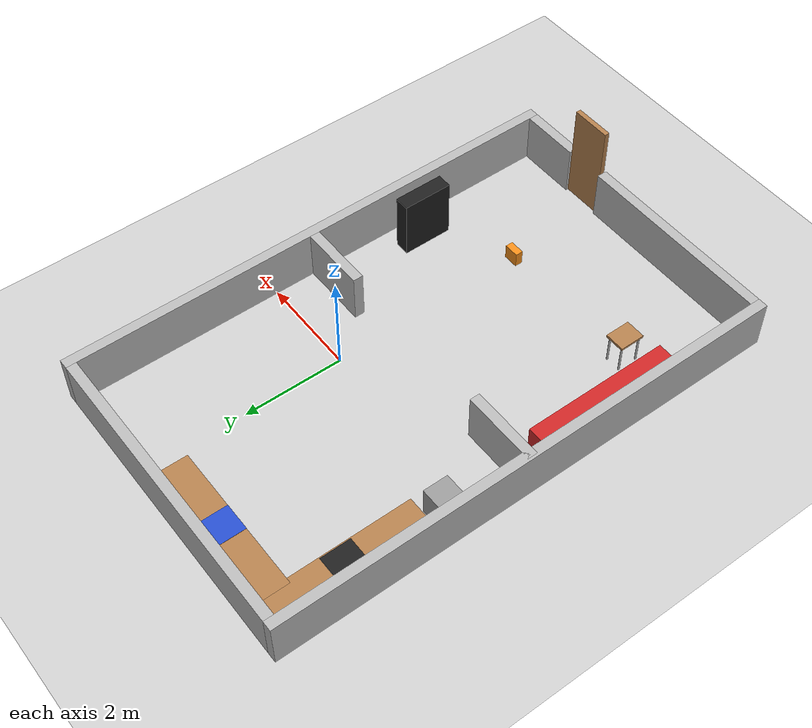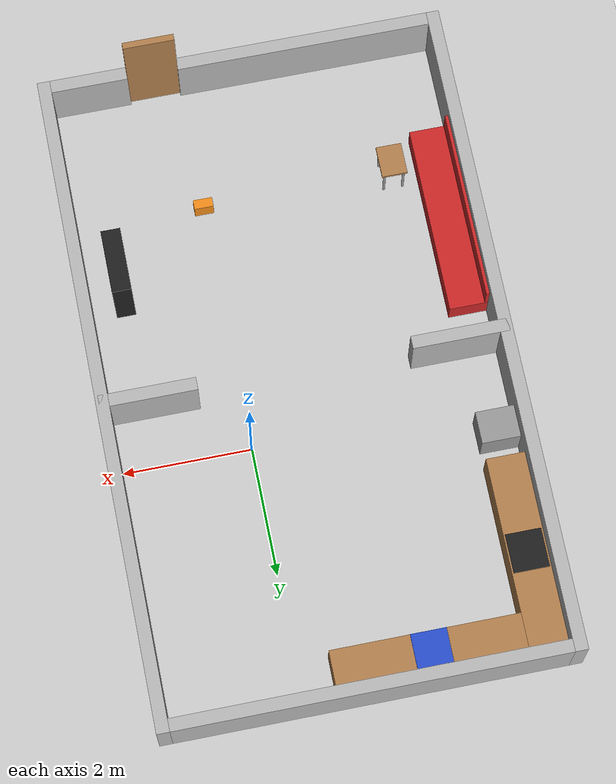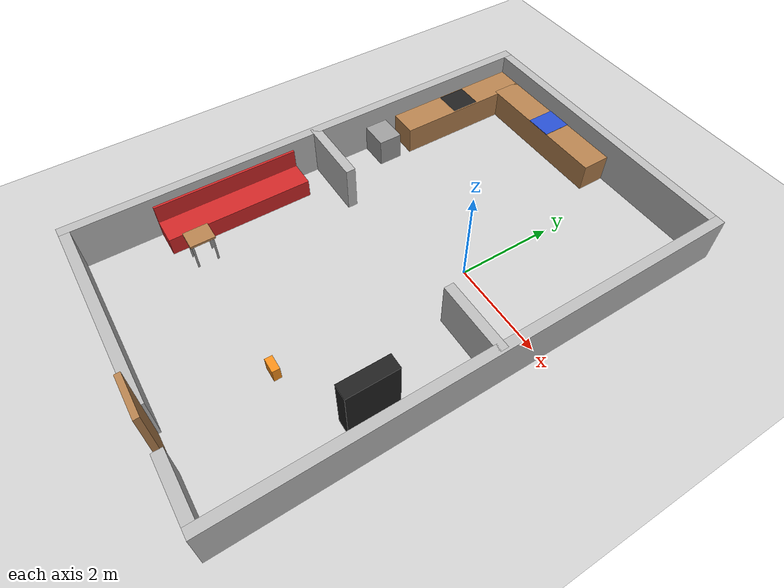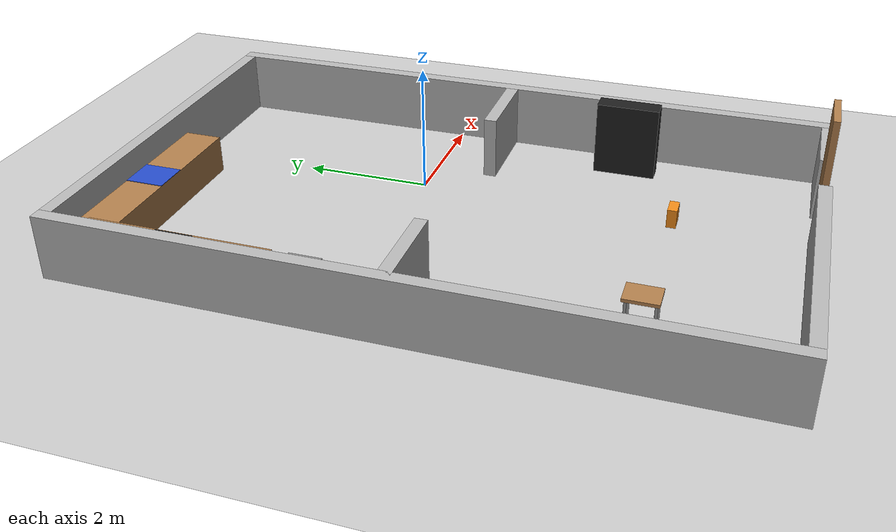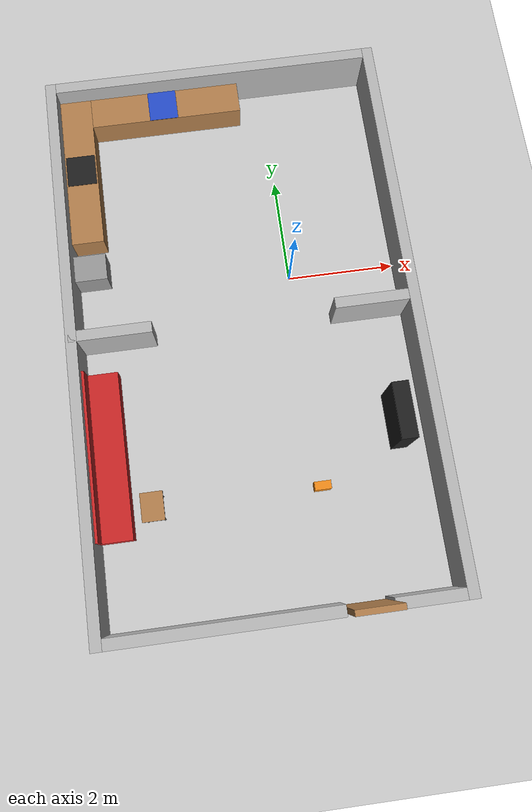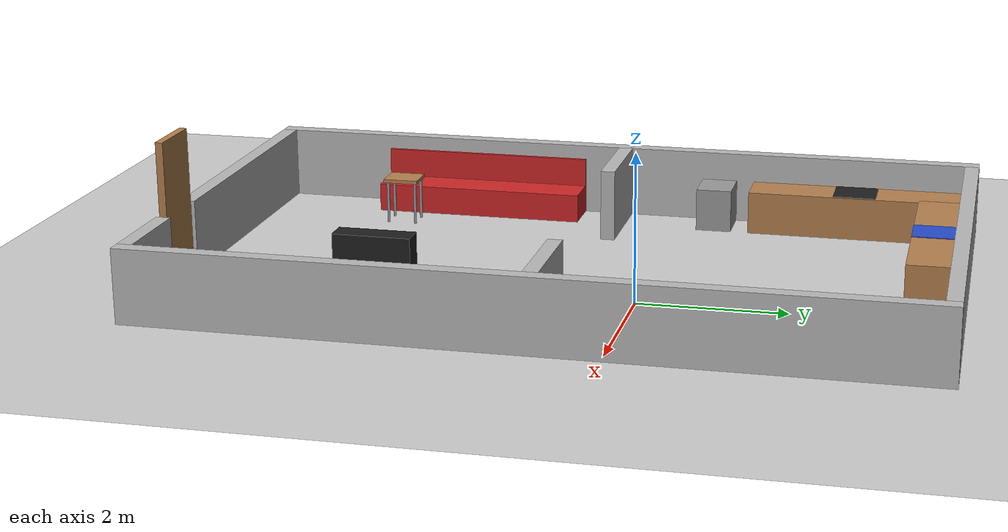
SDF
<sdf version="1.3">
 <world name="default">
  <physics type="ode">
   <gravity>0.000000 0.000000 -9.810000</gravity>
   <ode>
    <solver><type>quick</type><iters>20</iters><sor>1.000000</sor></solver>
    <constraints>
     <cfm>0.000000</cfm>
     <erp>0.200000</erp>
     <contact_max_correcting_vel>100.000000</contact_max_correcting_vel>
     <contact_surface_layer>0.000000</contact_surface_layer>
    </constraints>
   </ode>
   <real_time_update_rate>1000.000000</real_time_update_rate>
   <max_step_size>0.001000</max_step_size>
   <real_time_factor>1.000000</real_time_factor>
   <max_contacts>20</max_contacts>
  </physics>
  <light name="sun" type="directional">
   <pose>0.000000 0.000000 10.000000 0.000000 0.000000 0.000000</pose>
   <diffuse>0.800000 0.800000 0.800000 1.000000</diffuse>
   <specular>0.200000 0.200000 0.200000 1.000000</specular>
   <attenuation>
    <range>1000.000000</range>
    <constant>0.900000</constant>
    <linear>0.010000</linear>
    <quadratic>0.001000</quadratic>
   </attenuation>
   <direction>0.500000 0.100000 -0.900000</direction>
  </light>
  <model name="ground_plane">
   <static>1</static>
   <link name="link">
    <collision name="collision">
     <geometry>
      <plane><normal>0.000000 0.000000 1.000000</normal><size>100.000000 100.000000</size></plane>
     </geometry>
     <surface><friction><ode><mu>100.000000</mu><mu2>50.000000</mu2></ode></friction></surface>
    </collision>
    <visual name="visual">
     <cast_shadows>0</cast_shadows>
     <geometry>
      <plane><normal>0.000000 0.000000 1.000000</normal><size>100.000000 100.000000</size></plane>
     </geometry>
     <material>
      <script><uri>file://media/materials/scripts/gazebo.material</uri><name>Gazebo/Grey</name></script>
     </material>
    </visual>
    <velocity_decay><linear>0.000000</linear><angular>0.000000</angular></velocity_decay>
   </link>
  </model>
  <model name="wall_1_a_model">
   <pose>-2.0 -6.1 0.5 0.0 0.0 0.0</pose>
   <static>1</static>
   <link name="wall_1_a_body">
    <inertial>
     <mass>1.000000</mass>
     <inertia>
      <ixx>1.000000</ixx>
      <ixy>0.000000</ixy>
      <ixz>0.000000</ixz>
      <iyy>1.000000</iyy>
      <iyz>0.000000</iyz>
      <izz>1.000000</izz>
     </inertia>
    </inertial>
    <collision name="collision"><geometry><box><size>4.000000 0.200000 1.00000</size></box></geometry></collision>
    <visual name="visual"><geometry><box><size>4.000000 0.200000 1.000000</size></box></geometry></visual>
    <velocity_decay><linear>0.000000</linear><angular>0.000000</angular></velocity_decay>
   </link>
  </model>
  <model name="door_model">
   <pose>0.4 -6.1 1.0 0.0 0.0 0.0</pose>
   <static>1</static>
   <link name="door_body">
    <inertial>
     <mass>1.000000</mass>
     <inertia>
      <ixx>1.000000</ixx>
      <ixy>0.000000</ixy>
      <ixz>0.000000</ixz>
      <iyy>1.000000</iyy>
      <iyz>0.000000</iyz>
      <izz>1.000000</izz>
     </inertia>
    </inertial>
    <collision name="collision"><geometry><box><size>0.80000 0.100000 2.000000</size></box></geometry></collision>
    <visual name="visual">
     <geometry><box><size>0.800000 0.100000 2.000000</size></box></geometry>
     <material>
      <script><uri>file://media/materials/scripts/gazebo.material</uri><name>Gazebo/Wood</name></script>
     </material>
    </visual>
    <velocity_decay><linear>0.000000</linear><angular>0.000000</angular></velocity_decay>
   </link>
  </model>
  <model name="wall_1_b_model">
   <pose>1.4 -6.1 0.5 0.0 0.0 0.0</pose>
   <static>1</static>
   <link name="wall_1_b_body">
    <inertial>
     <mass>1.000000</mass>
     <inertia>
      <ixx>1.000000</ixx>
      <ixy>0.000000</ixy>
      <ixz>0.000000</ixz>
      <iyy>1.000000</iyy>
      <iyz>0.000000</iyz>
      <izz>1.000000</izz>
     </inertia>
    </inertial>
    <collision name="collision"><geometry><box><size>1.20000 0.200000 1.000000</size></box></geometry></collision>
    <visual name="visual"><geometry><box><size>1.200000 0.200000 1.000000</size></box></geometry></visual>
    <velocity_decay><linear>0.000000</linear><angular>0.000000</angular></velocity_decay>
   </link>
  </model>
  <model name="wall_2_model">
   <pose>-1.0 4.1 0.5 0.0 0.0 0.0</pose>
   <static>1</static>
   <link name="wall_2_body">
    <inertial>
     <mass>1.000000</mass>
     <inertia>
      <ixx>1.000000</ixx>
      <ixy>0.000000</ixy>
      <ixz>0.000000</ixz>
      <iyy>1.000000</iyy>
      <iyz>0.000000</iyz>
      <izz>1.000000</izz>
     </inertia>
    </inertial>
    <collision name="collision">
     <geometry><box><size>6.000000 0.200000 1.000000</size></box></geometry>
    </collision>
    <visual name="visual"><geometry><box><size>6.000000 0.200000 1.000000</size></box></geometry></visual>
    <velocity_decay><linear>0.000000</linear><angular>0.000000</angular></velocity_decay>
   </link>
  </model>
  <model name="wall_3_model">
   <pose>-4.1 -1.0 0.5 0.0 0.0 0.0</pose>
   <static>1</static>
   <link name="wall_3_body">
    <inertial>
     <mass>1.000000</mass>
     <inertia>
      <ixx>1.000000</ixx>
      <ixy>0.000000</ixy>
      <ixz>0.000000</ixz>
      <iyy>1.000000</iyy>
      <iyz>0.000000</iyz>
      <izz>1.000000</izz>
     </inertia>
    </inertial>
    <collision name="collision">
     <geometry><box><size>0.200000 10.400000 1.000000</size></box></geometry>
    </collision>
    <visual name="visual"><geometry><box><size>0.200000 10.400000 1.000000</size></box></geometry></visual>
    <velocity_decay><linear>0.000000</linear><angular>0.000000</angular></velocity_decay>
   </link>
  </model>
  <model name="wall_4_model">
   <pose>2.1 -1.0 0.5 0.0 0.0 0.0</pose>
   <static>1</static>
   <link name="wall_4_body">
    <inertial>
     <mass>1.000000</mass>
     <inertia>
      <ixx>1.000000</ixx>
      <ixy>0.000000</ixy>
      <ixz>0.000000</ixz>
      <iyy>1.000000</iyy>
      <iyz>0.000000</iyz>
      <izz>1.000000</izz>
     </inertia>
    </inertial>
    <collision name="collision">
     <geometry><box><size>0.200000 10.400000 1.000000</size></box></geometry>
    </collision>
    <visual name="visual"><geometry><box><size>0.200000 10.400000 1.000000</size></box></geometry></visual>
    <velocity_decay><linear>0.000000</linear><angular>0.000000</angular></velocity_decay>
   </link>
  </model>
  <model name="wall_5_model">
   <pose>1.4 -0.9 0.5 0.0 0.0 0.0</pose>
   <static>1</static>
   <link name="wall_5_body">
    <inertial>
     <mass>1.000000</mass>
     <inertia>
      <ixx>1.000000</ixx>
      <ixy>0.000000</ixy>
      <ixz>0.000000</ixz>
      <iyy>1.000000</iyy>
      <iyz>0.000000</iyz>
      <izz>1.000000</izz>
     </inertia>
    </inertial>
    <collision name="collision">
     <geometry><box><size>1.500000 0.200000 1.000000</size></box></geometry>
    </collision>
    <visual name="visual"><geometry><box><size>1.500000 0.200000 1.000000</size></box></geometry></visual>
    <velocity_decay><linear>0.000000</linear><angular>0.000000</angular></velocity_decay>
   </link>
  </model>
  <model name="wall_6_model">
   <pose>-3.4 -0.9 0.5 0.0 0.0 0.0</pose>
   <static>1</static>
   <link name="wall_6_body">
    <inertial>
     <mass>1.000000</mass>
     <inertia>
      <ixx>1.000000</ixx>
      <ixy>0.000000</ixy>
      <ixz>0.000000</ixz>
      <iyy>1.000000</iyy>
      <iyz>0.000000</iyz>
      <izz>1.000000</izz>
     </inertia>
    </inertial>
    <collision name="collision">
     <geometry><box><size>1.500000 0.200000 1.000000</size></box></geometry>
    </collision>
    <visual name="visual"><geometry><box><size>1.500000 0.200000 1.000000</size></box></geometry></visual>
    <velocity_decay><linear>0.000000</linear><angular>0.000000</angular></velocity_decay>
   </link>
  </model>
  <model name="kitchen_1_model">
   <pose>-3.7 2.5 0.3 0.0 0.0 0.0</pose>
   <static>1</static>
   <link name="kitchen_1_body">
    <inertial>
     <mass>1.000000</mass>
     <inertia>
      <ixx>1.000000</ixx>
      <ixy>0.000000</ixy>
      <ixz>0.000000</ixz>
      <iyy>1.000000</iyy>
      <iyz>0.000000</iyz>
      <izz>1.000000</izz>
     </inertia>
    </inertial>
    <collision name="collision">
     <geometry><box><size>0.600000 3.000000 0.600000</size></box></geometry>
    </collision>
    <visual name="visual">
     <geometry><box><size>0.600000 3.000000 0.600000</size></box></geometry>
     <material>
      <script><uri>file://media/materials/scripts/gazebo.material</uri><name>Gazebo/Wood</name></script>
     </material>
    </visual>
    <velocity_decay><linear>0.000000</linear><angular>0.000000</angular></velocity_decay>
   </link>
   <link name="stove_body">
    <pose>0.0 0.0 0.305 0.0 0.0 0.0</pose>
    <inertial>
     <mass>1.000000</mass>
     <inertia>
      <ixx>1.000000</ixx>
      <ixy>0.000000</ixy>
      <ixz>0.000000</ixz>
      <iyy>1.000000</iyy>
      <iyz>0.000000</iyz>
      <izz>1.000000</izz>
     </inertia>
    </inertial>
    <collision name="collision">
     <geometry><box><size>0.5500000 0.600000 0.010000</size></box></geometry>
    </collision>
    <visual name="visual">
     <geometry><box><size>0.5500000 0.600000 0.010000</size></box></geometry>
     <material>
      <script><uri>file://media/materials/scripts/gazebo.material</uri><name>Gazebo/Black</name></script>
     </material>
    </visual>
    <velocity_decay><linear>0.000000</linear><angular>0.000000</angular></velocity_decay>
   </link>
  </model>
  <model name="kitchen_2_model">
   <pose>-2.0 3.7 0.3 0.0 0.0 0.0</pose>
   <static>1</static>
   <link name="kitchen_2_body">
    <inertial>
     <mass>1.000000</mass>
     <inertia>
      <ixx>1.000000</ixx>
      <ixy>0.000000</ixy>
      <ixz>0.000000</ixz>
      <iyy>1.000000</iyy>
      <iyz>0.000000</iyz>
      <izz>1.000000</izz>
     </inertia>
    </inertial>
    <collision name="collision">
     <geometry><box><size>3.000000 0.600000 0.600000</size></box></geometry>
    </collision>
    <visual name="visual">
     <geometry><box><size>3.000000 0.600000 0.600000</size></box></geometry>
     <material>
      <script><uri>file://media/materials/scripts/gazebo.material</uri><name>Gazebo/Wood</name></script>
     </material>
    </visual>
    <velocity_decay><linear>0.000000</linear><angular>0.000000</angular></velocity_decay>
   </link>
   <link name="sink_body">
    <pose>0.0 0.0 0.305 0.0 0.0 0.0</pose>
    <inertial>
     <mass>1.000000</mass>
     <inertia>
      <ixx>1.000000</ixx>
      <ixy>0.000000</ixy>
      <ixz>0.000000</ixz>
      <iyy>1.000000</iyy>
      <iyz>0.000000</iyz>
      <izz>1.000000</izz>
     </inertia>
    </inertial>
    <collision name="collision">
     <geometry><box><size>0.5500000 0.600000 0.010000</size></box></geometry>
    </collision>
    <visual name="visual">
     <geometry><box><size>0.5500000 0.600000 0.0100000</size></box></geometry>
     <material>
      <script><uri>file://media/materials/scripts/gazebo.material</uri><name>Gazebo/Blue</name></script>
     </material>
    </visual>
    <velocity_decay><linear>0.000000</linear><angular>0.000000</angular></velocity_decay>
   </link>
  </model>
  <model name="fridge">
   <pose>-3.7 0.5 0.3 0.0 0.0 0.0</pose>
   <static>1</static>
   <link name="fridge_body">
    <inertial>
     <mass>1.000000</mass>
     <inertia>
      <ixx>1.000000</ixx>
      <ixy>0.000000</ixy>
      <ixz>0.000000</ixz>
      <iyy>1.000000</iyy>
      <iyz>0.000000</iyz>
      <izz>1.000000</izz>
     </inertia>
    </inertial>
    <collision name="collision">
     <geometry><box><size>0.6000000 0.500000 0.600000</size></box></geometry>
    </collision>
    <visual name="visual">
     <geometry><box><size>0.600000 0.500000 0.600000</size></box></geometry>
     <material>
      <script><uri>file://media/materials/scripts/gazebo.material</uri><name>Gazebo/Grey</name></script>
     </material>
    </visual>
    <velocity_decay><linear>0.000000</linear><angular>0.000000</angular></velocity_decay>
   </link>
  </model>
  <model name="sofa">
   <pose>-3.7 -3.0 0.2 0.0 0.0 0.0</pose>
   <static>1</static>
   <link name="sofa_body">
    <inertial>
     <mass>1.000000</mass>
     <inertia>
      <ixx>1.000000</ixx>
      <ixy>0.000000</ixy>
      <ixz>0.000000</ixz>
      <iyy>1.000000</iyy>
      <iyz>0.000000</iyz>
      <izz>1.000000</izz>
     </inertia>
    </inertial>
    <collision name="collision">
     <geometry><box><size>0.6000000 3.000000 0.400000</size></box></geometry>
    </collision>
    <visual name="visual">
     <geometry><box><size>0.600000 3.00000 0.400000</size></box></geometry>
     <material>
      <script><uri>file://media/materials/scripts/gazebo.material</uri><name>Gazebo/Red</name></script>
     </material>
    </visual>
    <velocity_decay><linear>0.000000</linear><angular>0.000000</angular></velocity_decay>
   </link>
   <link name="sofa_back">
    <pose>-0.275 0.0 0.4 0.0 0.0 0.0</pose>
    <inertial>
     <mass>1.000000</mass>
     <inertia>
      <ixx>1.000000</ixx>
      <ixy>0.000000</ixy>
      <ixz>0.000000</ixz>
      <iyy>1.000000</iyy>
      <iyz>0.000000</iyz>
      <izz>1.000000</izz>
     </inertia>
    </inertial>
    <collision name="collision">
     <geometry><box><size>0.0500000 3.000000 0.400000</size></box></geometry>
    </collision>
    <visual name="visual">
     <geometry><box><size>0.0500000 3.00000 0.400000</size></box></geometry>
     <material>
      <script><uri>file://media/materials/scripts/gazebo.material</uri><name>Gazebo/Red</name></script>
     </material>
    </visual>
    <velocity_decay><linear>0.000000</linear><angular>0.000000</angular></velocity_decay>
   </link>
  </model>
  <model name="tv_stand">
   <pose>1.5 -3.0 0.6 0.0 0.0 0.0</pose>
   <static>1</static>
   <link name="tv_stand_body">
    <inertial>
     <mass>1.000000</mass>
     <inertia>
      <ixx>1.000000</ixx>
      <ixy>0.000000</ixy>
      <ixz>0.000000</ixz>
      <iyy>1.000000</iyy>
      <iyz>0.000000</iyz>
      <izz>1.000000</izz>
     </inertia>
    </inertial>
    <collision name="collision">
     <geometry><box><size>0.3000000 1.000000 1.200000</size></box></geometry>
    </collision>
    <visual name="visual">
     <geometry><box><size>0.300000 1.00000 1.200000</size></box></geometry>
     <material>
      <script><uri>file://media/materials/scripts/gazebo.material</uri><name>Gazebo/Black</name></script>
     </material>
    </visual>
    <velocity_decay><linear>0.000000</linear><angular>0.000000</angular></velocity_decay>
   </link>
  </model>
  <model name="table">
   <pose>-3.0 -4.0 0.0 0.0 0.0 0.0</pose>
   <static>0</static>
   <link name="link">
    <collision name="front_left_leg">
     <pose>0.150000 -0.20000 0.300000 0.000000 0.000000 0.000000</pose>
     <geometry><cylinder><radius>0.020000</radius><length>0.600000</length></cylinder></geometry>
    </collision>
    <visual name="front_left_leg">
     <pose>0.150000 -0.20000 0.300000 0.000000 0.000000 0.000000</pose>
     <geometry><cylinder><radius>0.020000</radius><length>0.600000</length></cylinder></geometry>
     <material>
      <script><uri>file://media/materials/scripts/gazebo.material</uri><name>Gazebo/Grey</name></script>
     </material>
    </visual>
    <collision name="front_right_leg">
     <pose>0.150000 0.20000 0.300000 0.000000 0.000000 0.000000</pose>
     <geometry><cylinder><radius>0.020000</radius><length>0.600000</length></cylinder></geometry>
    </collision>
    <visual name="front_right_leg">
     <pose>0.150000 0.200000 0.300000 0.000000 0.000000 0.000000</pose>
     <geometry><cylinder><radius>0.020000</radius><length>0.600000</length></cylinder></geometry>
     <material>
      <script><uri>file://media/materials/scripts/gazebo.material</uri><name>Gazebo/Grey</name></script>
     </material>
    </visual>
    <collision name="back_right_leg">
     <pose>-0.150000 0.200000 0.300000 0.000000 0.000000 0.000000</pose>
     <geometry><cylinder><radius>0.020000</radius><length>0.600000</length></cylinder></geometry>
    </collision>
    <visual name="back_right_leg">
     <pose>-0.150000 0.20000 0.300000 0.000000 0.000000 0.000000</pose>
     <geometry><cylinder><radius>0.020000</radius><length>0.600000</length></cylinder></geometry>
     <material>
      <script><uri>file://media/materials/scripts/gazebo.material</uri><name>Gazebo/Grey</name></script>
     </material>
    </visual>
    <collision name="back_left_leg">
     <pose>-0.150000 -0.20000 0.300000 0.000000 0.000000 0.000000</pose>
     <geometry><cylinder><radius>0.020000</radius><length>0.600000</length></cylinder></geometry>
    </collision>
    <visual name="back_left_leg">
     <pose>-0.150000 -0.20000 0.300000 0.000000 0.000000 0.000000</pose>
     <geometry><cylinder><radius>0.020000</radius><length>0.600000</length></cylinder></geometry>
     <material>
      <script><uri>file://media/materials/scripts/gazebo.material</uri><name>Gazebo/Grey</name></script>
     </material>
    </visual>
    <collision name="surface">
     <pose>0.000000 0.000000 0.625000 0.000000 0.000000 0.000000</pose>
     <geometry><box><size>0.400000 0.50000 0.050000</size></box></geometry>
    </collision>
    <visual name="visual1">
     <pose>0.000000 0.000000 0.625000 0.000000 0.000000 0.000000</pose>
     <geometry><box><size>0.400000 0.500000 0.050000</size></box></geometry>
     <material>
      <script><uri>file://media/materials/scripts/gazebo.material</uri><name>Gazebo/Wood</name></script>
     </material>
    </visual>
    <velocity_decay><linear>0.000000</linear><angular>0.000000</angular></velocity_decay>
   </link>
  </model>
  <model name="dog">
   <pose>0.0 -4.0 0.15 0.0 0.0 0.0</pose>
   <static>0</static>
   <link name="dog_body">
    <inertial>
     <mass>1.000000</mass>
     <inertia>
      <ixx>0.000000</ixx>
      <ixy>0.000000</ixy>
      <ixz>0.000000</ixz>
      <iyy>0.000000</iyy>
      <iyz>0.000000</iyz>
      <izz>0.000000</izz>
     </inertia>
    </inertial>
    <collision name="collision">
     <geometry><box><size>0.3000000 0.1500000 0.300000</size></box></geometry>
     <max_contacts>100</max_contacts>
    </collision>
    <visual name="visual">
     <geometry><box><size>0.300000 0.150000 0.300000</size></box></geometry>
     <material>
      <script><uri>file://media/materials/scripts/gazebo.material</uri><name>Gazebo/Orange</name></script>
     </material>
    </visual>
    <velocity_decay><linear>0.000000</linear><angular>0.000000</angular></velocity_decay>
   </link>
  </model>
  <scene>
   <ambient>0.200000 0.200000 0.200000 1.000000</ambient>
   <background>0.700000 0.700000 0.700000 1.000000</background>
   <shadows>1</shadows>
  </scene>
 </world>
</sdf>
